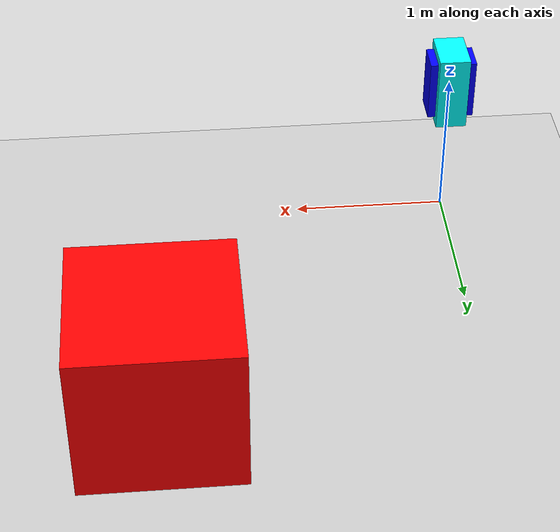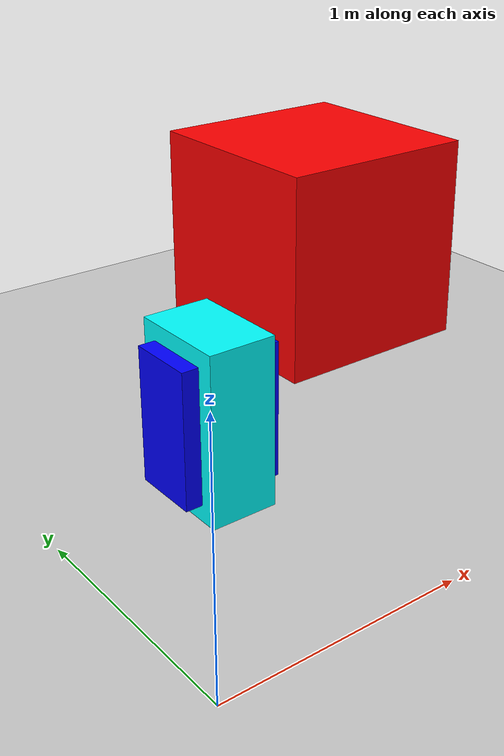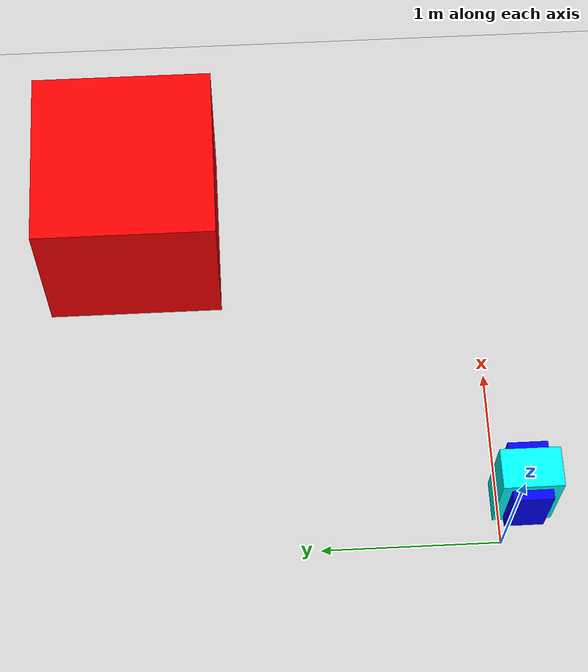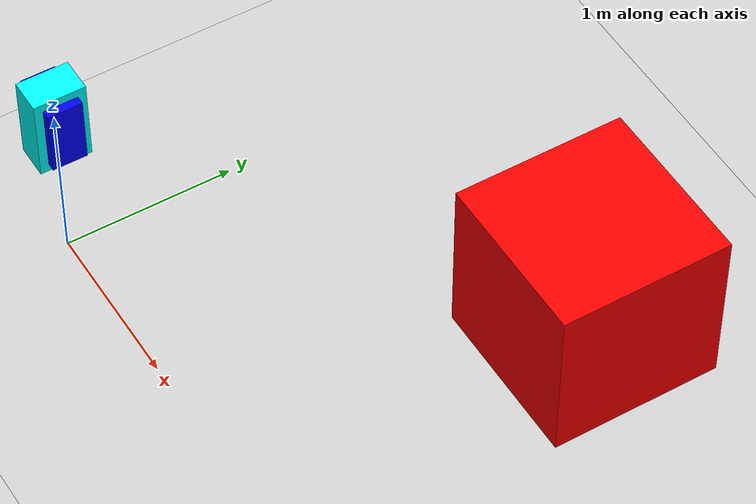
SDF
<?xml version="1.0" ?>
<sdf version="1.7">
  <world name="humanoid_world">
    <!-- Physics Engine Configuration -->
    <physics type="ode">
      <gravity>0 0 -9.81</gravity>
      <max_step_size>0.001</max_step_size>
      <real_time_factor>1.0</real_time_factor>
      <real_time_update_rate>1000</real_time_update_rate>
    </physics>

    <!-- Include default ground plane -->
    <include>
      <uri>model://ground_plane</uri>
    </include>

    <!-- Include default sun light -->
    <include>
      <uri>model://sun</uri>
    </include>

    <!-- Humanoid Robot Model -->
    <include>
      <name>humanoid_robot</name>
      <uri>model://humanoid_robot</uri>
      <pose>0 0 1 0 0 0</pose>
    </include>

    <!-- Additional environment objects can be added here -->
    <model name="obstacle_1">
      <pose>2 2 0.5 0 0 0</pose>
      <link name="link">
        <collision name="collision">
          <geometry>
            <box>
              <size>1 1 1</size>
            </box>
          </geometry>
        </collision>
        <visual name="visual">
          <geometry>
            <box>
              <size>1 1 1</size>
            </box>
          </geometry>
          <material>
            <ambient>0.5 0 0 1</ambient>
            <diffuse>1 0 0 1</diffuse>
          </material>
        </visual>
        <inertial>
          <mass>1.0</mass>
          <inertia>
            <ixx>0.1667</ixx>
            <ixy>0</ixy>
            <ixz>0</ixz>
            <iyy>0.1667</iyy>
            <iyz>0</iyz>
            <izz>0.1667</izz>
          </inertia>
        </inertial>
      </link>
    </model>
  </world>
</sdf>

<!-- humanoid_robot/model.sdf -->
<sdf version="1.7">
  <model name="humanoid_robot">
    <!-- Base Link -->
    <link name="base_link">
      <inertial>
        <mass>10.0</mass>
        <inertia>
          <ixx>0.1</ixx>
          <ixy>0.0</ixy>
          <ixz>0.0</ixz>
          <iyy>0.1</iyy>
          <iyz>0.0</iyz>
          <izz>0.1</izz>
        </inertia>
      </inertial>
      <visual name="base_visual">
        <geometry>
          <box>
            <size>0.3 0.2 0.4</size>
          </box>
        </geometry>
        <material>
          <ambient>0.0 0.0 1.0 1.0</ambient>
          <diffuse>0.0 0.0 1.0 1.0</diffuse>
        </material>
      </visual>
      <collision name="base_collision">
        <geometry>
          <box>
            <size>0.3 0.2 0.4</size>
          </box>
        </geometry>
      </collision>
    </link>

    <!-- Torso -->
    <link name="torso">
      <inertial>
        <mass>5.0</mass>
        <inertia>
          <ixx>0.2</ixx>
          <ixy>0.0</ixy>
          <ixz>0.0</ixz>
          <iyy>0.2</iyy>
          <iyz>0.0</iyz>
          <izz>0.2</izz>
        </inertia>
      </inertial>
      <visual name="torso_visual">
        <geometry>
          <box>
            <size>0.2 0.3 0.5</size>
          </box>
        </geometry>
        <material>
          <ambient>0.0 1.0 1.0 1.0</ambient>
          <diffuse>0.0 1.0 1.0 1.0</diffuse>
        </material>
      </visual>
      <collision name="torso_collision">
        <geometry>
          <box>
            <size>0.2 0.3 0.5</size>
          </box>
        </geometry>
      </collision>
    </link>

    <joint name="base_to_torso" type="fixed">
      <parent>base_link</parent>
      <child>torso</child>
      <pose>0 0 0.3 0 0 0</pose>
    </joint>

    <!-- Head -->
    <link name="head">
      <inertial>
        <mass>2.0</mass>
        <inertia>
          <ixx>0.01</ixx>
          <ixy>0.0</ixy>
          <ixz>0.0</ixz>
          <iyy>0.01</iyy>
          <iyz>0.0</iyz>
          <izz>0.01</izz>
        </inertia>
      </inertial>
      <visual name="head_visual">
        <geometry>
          <sphere>
            <radius>0.1</radius>
          </sphere>
        </geometry>
        <material>
          <ambient>1.0 0.8 0.6 1.0</ambient>
          <diffuse>1.0 0.8 0.6 1.0</diffuse>
        </material>
      </visual>
      <collision name="head_collision">
        <geometry>
          <sphere>
            <radius>0.1</radius>
          </sphere>
        </geometry>
      </collision>
    </link>

    <joint name="torso_to_head" type="revolute">
      <parent>torso</parent>
      <child>head</child>
      <axis>
        <xyz>0 1 0</xyz>
        <limit>
          <lower>-0.5</lower>
          <upper>0.5</upper>
          <effort>10.0</effort>
          <velocity>1.0</velocity>
        </limit>
      </axis>
      <pose>0 0 0.35 0 0 0</pose>
    </joint>

    <!-- Left Arm -->
    <link name="left_upper_arm">
      <inertial>
        <mass>1.0</mass>
        <inertia>
          <ixx>0.01</ixx>
          <ixy>0.0</ixy>
          <ixz>0.0</ixz>
          <iyy>0.01</iyy>
          <iyz>0.0</iyz>
          <izz>0.01</izz>
        </inertia>
      </inertial>
      <visual name="left_upper_arm_visual">
        <geometry>
          <cylinder>
            <length>0.3</length>
            <radius>0.05</radius>
          </cylinder>
        </geometry>
        <material>
          <ambient>0.0 1.0 0.0 1.0</ambient>
          <diffuse>0.0 1.0 0.0 1.0</diffuse>
        </material>
      </visual>
      <collision name="left_upper_arm_collision">
        <geometry>
          <cylinder>
            <length>0.3</length>
            <radius>0.05</radius>
          </cylinder>
        </geometry>
      </collision>
    </link>

    <joint name="left_shoulder" type="revolute">
      <parent>torso</parent>
      <child>left_upper_arm</child>
      <axis>
        <xyz>0 1 0</xyz>
        <limit>
          <lower>-1.57</lower>
          <upper>1.57</upper>
          <effort>10.0</effort>
          <velocity>1.0</velocity>
        </limit>
      </axis>
      <pose>0.1 0.15 0.1 0 0 0</pose>
    </joint>

    <!-- Right Arm -->
    <link name="right_upper_arm">
      <inertial>
        <mass>1.0</mass>
        <inertia>
          <ixx>0.01</ixx>
          <ixy>0.0</ixy>
          <ixz>0.0</ixz>
          <iyy>0.01</iyy>
          <iyz>0.0</iyz>
          <izz>0.01</izz>
        </inertia>
      </inertial>
      <visual name="right_upper_arm_visual">
        <geometry>
          <cylinder>
            <length>0.3</length>
            <radius>0.05</radius>
          </cylinder>
        </geometry>
        <material>
          <ambient>0.0 1.0 0.0 1.0</ambient>
          <diffuse>0.0 1.0 0.0 1.0</diffuse>
        </material>
      </visual>
      <collision name="right_upper_arm_collision">
        <geometry>
          <cylinder>
            <length>0.3</length>
            <radius>0.05</radius>
          </cylinder>
        </geometry>
      </collision>
    </link>

    <joint name="right_shoulder" type="revolute">
      <parent>torso</parent>
      <child>right_upper_arm</child>
      <axis>
        <xyz>0 1 0</xyz>
        <limit>
          <lower>-1.57</lower>
          <upper>1.57</upper>
          <effort>10.0</effort>
          <velocity>1.0</velocity>
        </limit>
      </axis>
      <pose>0.1 -0.15 0.1 0 0 0</pose>
    </joint>

    <!-- Left Leg -->
    <link name="left_upper_leg">
      <inertial>
        <mass>2.0</mass>
        <inertia>
          <ixx>0.05</ixx>
          <ixy>0.0</ixy>
          <ixz>0.0</ixz>
          <iyy>0.05</iyy>
          <iyz>0.0</iyz>
          <izz>0.05</izz>
        </inertia>
      </inertial>
      <visual name="left_upper_leg_visual">
        <geometry>
          <cylinder>
            <length>0.4</length>
            <radius>0.06</radius>
          </cylinder>
        </geometry>
        <material>
          <ambient>1.0 0.0 0.0 1.0</ambient>
          <diffuse>1.0 0.0 0.0 1.0</diffuse>
        </material>
      </visual>
      <collision name="left_upper_leg_collision">
        <geometry>
          <cylinder>
            <length>0.4</length>
            <radius>0.06</radius>
          </cylinder>
        </geometry>
      </collision>
    </link>

    <joint name="left_hip" type="revolute">
      <parent>base_link</parent>
      <child>left_upper_leg</child>
      <axis>
        <xyz>0 1 0</xyz>
        <limit>
          <lower>-1.0</lower>
          <upper>0.5</upper>
          <effort>15.0</effort>
          <velocity>1.0</velocity>
        </limit>
      </axis>
      <pose>-0.1 0.1 -0.1 0 0 0</pose>
    </joint>

    <!-- Right Leg -->
    <link name="right_upper_leg">
      <inertial>
        <mass>2.0</mass>
        <inertia>
          <ixx>0.05</ixx>
          <ixy>0.0</ixy>
          <ixz>0.0</ixz>
          <iyy>0.05</iyy>
          <iyz>0.0</iyz>
          <izz>0.05</izz>
        </inertia>
      </inertial>
      <visual name="right_upper_leg_visual">
        <geometry>
          <cylinder>
            <length>0.4</length>
            <radius>0.06</radius>
          </cylinder>
        </geometry>
        <material>
          <ambient>1.0 0.0 0.0 1.0</ambient>
          <diffuse>1.0 0.0 0.0 1.0</diffuse>
        </material>
      </visual>
      <collision name="right_upper_leg_collision">
        <geometry>
          <cylinder>
            <length>0.4</length>
            <radius>0.06</radius>
          </cylinder>
        </geometry>
      </collision>
    </link>

    <joint name="right_hip" type="revolute">
      <parent>base_link</parent>
      <child>right_upper_leg</child>
      <axis>
        <xyz>0 1 0</xyz>
        <limit>
          <lower>-1.0</lower>
          <upper>0.5</upper>
          <effort>15.0</effort>
          <velocity>1.0</velocity>
        </limit>
      </axis>
      <pose>-0.1 -0.1 -0.1 0 0 0</pose>
    </joint>

    <!-- Sensors -->
    <!-- IMU Sensor -->
    <sensor name="imu_sensor" type="imu">
      <always_on>true</always_on>
      <update_rate>100</update_rate>
      <pose>0 0 0.1 0 0 0</pose>
    </sensor>

    <!-- LiDAR Sensor -->
    <sensor name="lidar_sensor" type="ray">
      <always_on>true</always_on>
      <update_rate>10</update_rate>
      <pose>0.15 0 0.1 0 0 0</pose>
      <ray>
        <scan>
          <horizontal>
            <samples>360</samples>
            <resolution>1</resolution>
            <min_angle>-3.14159</min_angle>
            <max_angle>3.14159</max_angle>
          </horizontal>
        </scan>
        <range>
          <min>0.1</min>
          <max>10.0</max>
          <resolution>0.01</resolution>
        </range>
      </ray>
    </sensor>

    <!-- Depth Camera Sensor -->
    <sensor name="depth_camera" type="depth">
      <always_on>true</always_on>
      <update_rate>30</update_rate>
      <pose>0.15 0 0.05 0 0 0</pose>
      <camera>
        <horizontal_fov>1.047</horizontal_fov>
        <image>
          <width>640</width>
          <height>480</height>
          <format>R8G8B8</format>
        </image>
        <clip>
          <near>0.1</near>
          <far>10</far>
        </clip>
      </camera>
    </sensor>
  </model>
</sdf>
